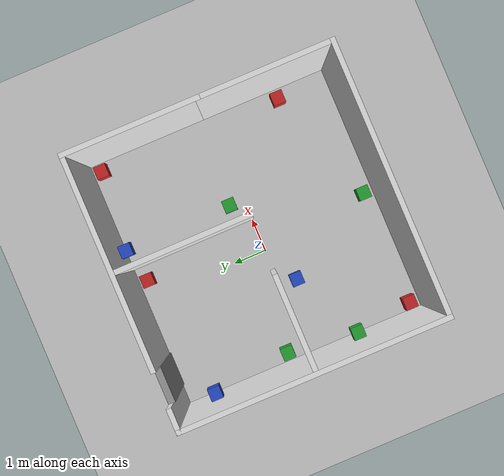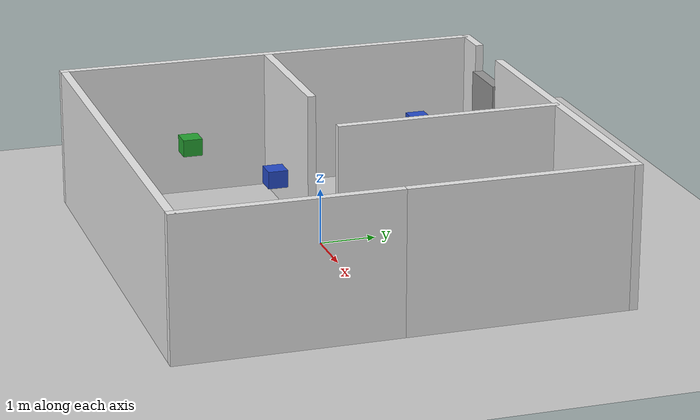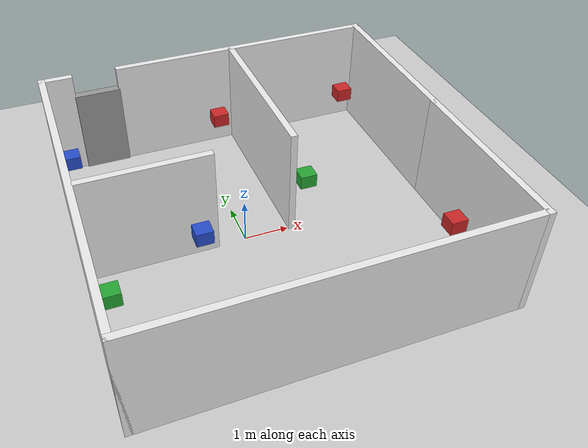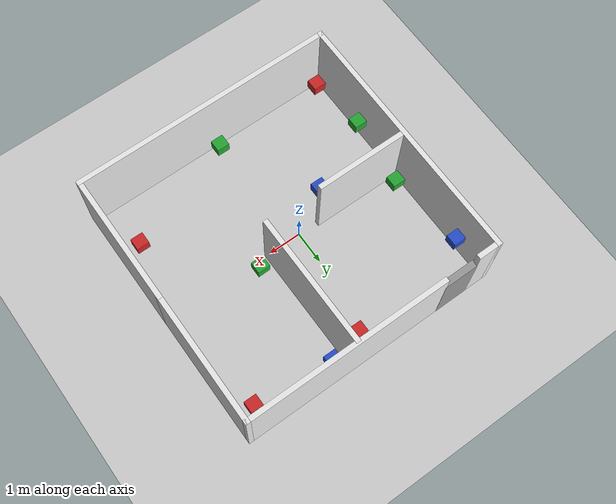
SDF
<sdf version="1.7">
 <world name="default">
  <light name="sun" type="directional">
   <pose>0 0 10 0 -0 0</pose>
   <diffuse>0.8 0.8 0.8 1</diffuse>
   <specular>0.2 0.2 0.2 1</specular>
   <attenuation>
    <range>1000</range>
    <constant>0.9</constant>
    <linear>0.01</linear>
    <quadratic>0.001</quadratic>
   </attenuation>
   <direction>-0.5 0.1 -0.9</direction>
   <spot><inner_angle>0</inner_angle><outer_angle>0</outer_angle><falloff>0</falloff></spot>
  </light>
  <model name="ground_plane">
   <static>1</static>
   <link name="link">
    <collision name="collision">
     <geometry><plane><normal>0 0 1</normal><size>100 100</size></plane></geometry>
     <surface>
      <contact><collide_bitmask>65535</collide_bitmask></contact>
      <friction><ode><mu>100</mu><mu2>50</mu2></ode></friction>
     </surface>
    </collision>
    <visual name="visual">
     <cast_shadows>0</cast_shadows>
     <geometry><plane><normal>0 0 1</normal><size>100 100</size></plane></geometry>
     <material>
      <script><uri>file://media/materials/scripts/gazebo.material</uri><name>Gazebo/Grey</name></script>
     </material>
    </visual>
   </link>
  </model>
  <gravity>0 0 -9.8</gravity>
  <magnetic_field>6e-06 2.3e-05 -4.2e-05</magnetic_field>
  <atmosphere type="adiabatic"/>
  <physics type="ode">
   <max_step_size>0.001</max_step_size>
   <real_time_factor>1</real_time_factor>
   <real_time_update_rate>1000</real_time_update_rate>
  </physics>
  <scene><ambient>0.4 0.4 0.4 1</ambient><background>0.7 0.7 0.7 1</background><shadows>1</shadows></scene>
  <audio><device>default</device></audio>
  <spherical_coordinates>
   <surface_model>EARTH_WGS84</surface_model>
   <latitude_deg>0</latitude_deg>
   <longitude_deg>0</longitude_deg>
   <elevation>0</elevation>
   <heading_deg>0</heading_deg>
  </spherical_coordinates>
  <model name="indoors">
   <pose>0.504507 0.100889 0 0 -0 0</pose>
   <link name="Door_0">
    <collision name="Door_0_Collision">
     <geometry><box><size>1.0414 0.2 2</size></box></geometry>
     <pose>0 0 1 0 -0 0</pose>
    </collision>
    <visual name="Door_0_Visual">
     <pose>0 0 1 0 -0 0</pose>
     <geometry><box><size>1.0414 0.2 2</size></box></geometry>
     <material>
      <script><uri>file://media/materials/scripts/gazebo.material</uri><name>Gazebo/Grey</name></script>
     </material>
    </visual>
    <pose>-2.7443 3.83 0 0 -0 0.001989</pose>
   </link>
   <link name="Wall_10">
    <collision name="Wall_10_Collision">
     <geometry><box><size>0.75 0.15 2.5</size></box></geometry>
     <pose>0 0 1.25 0 -0 0</pose>
    </collision>
    <visual name="Wall_10_Visual">
     <pose>0 0 1.25 0 -0 0</pose>
     <geometry><box><size>0.75 0.15 2.5</size></box></geometry>
     <material>
      <script><uri>file://media/materials/scripts/gazebo.material</uri><name>Gazebo/White</name></script>
      <ambient>0.96 0.89 0.79 1</ambient>
      <diffuse>0.96 0.89 0.79 1</diffuse>
     </material>
     <meta><layer>0</layer></meta>
    </visual>
    <pose>-3.625 3.85 0 0 -0 0</pose>
   </link>
   <link name="Wall_16">
    <collision name="Wall_16_Collision">
     <geometry><box><size>4 0.15 2.5</size></box></geometry>
     <pose>0 0 1.25 0 -0 0</pose>
    </collision>
    <visual name="Wall_16_Visual">
     <pose>0 0 1.25 0 -0 0</pose>
     <geometry><box><size>4 0.15 2.5</size></box></geometry>
     <material>
      <script><uri>file://media/materials/scripts/gazebo.material</uri><name>Gazebo/White</name></script>
      <ambient>0.96 0.89 0.79 1</ambient>
      <diffuse>0.96 0.89 0.79 1</diffuse>
     </material>
     <meta><layer>0</layer></meta>
    </visual>
    <pose>3.925 1.925 0 0 -0 1.5708</pose>
   </link>
   <link name="Wall_17">
    <collision name="Wall_17_Collision">
     <geometry><box><size>6.25 0.15 2.5</size></box></geometry>
     <pose>0 0 1.25 0 -0 0</pose>
    </collision>
    <visual name="Wall_17_Visual">
     <pose>0 0 1.25 0 -0 0</pose>
     <geometry><box><size>6.25 0.15 2.5</size></box></geometry>
     <material>
      <script><uri>file://media/materials/scripts/gazebo.material</uri><name>Gazebo/White</name></script>
      <ambient>0.96 0.89 0.79 1</ambient>
      <diffuse>0.96 0.89 0.79 1</diffuse>
     </material>
     <meta><layer>0</layer></meta>
    </visual>
    <pose>0.875 3.85 0 0 -0 3.14159</pose>
   </link>
   <link name="Wall_26">
    <collision name="Wall_26_Collision">
     <geometry><box><size>4 0.15 2.5</size></box></geometry>
     <pose>0 0 1.25 0 -0 0</pose>
    </collision>
    <visual name="Wall_26_Visual">
     <pose>0 0 1.25 0 -0 0</pose>
     <geometry><box><size>4 0.15 2.5</size></box></geometry>
     <material>
      <script><uri>file://media/materials/scripts/gazebo.material</uri><name>Gazebo/White</name></script>
      <ambient>0.96 0.89 0.79 1</ambient>
      <diffuse>0.96 0.89 0.79 1</diffuse>
     </material>
     <meta><layer>0</layer></meta>
    </visual>
    <pose>0.572237 1.85888 0 0 -0 1.57472</pose>
   </link>
   <link name="Wall_28">
    <collision name="Wall_28_Collision">
     <geometry><box><size>7.85 0.15 2.5</size></box></geometry>
     <pose>0 0 1.25 0 -0 0</pose>
    </collision>
    <visual name="Wall_28_Visual">
     <pose>0 0 1.25 0 -0 0</pose>
     <geometry><box><size>7.85 0.15 2.5</size></box></geometry>
     <material>
      <script><uri>file://media/materials/scripts/gazebo.material</uri><name>Gazebo/White</name></script>
      <ambient>0.96 0.89 0.79 1</ambient>
      <diffuse>0.96 0.89 0.79 1</diffuse>
     </material>
     <meta><layer>0</layer></meta>
    </visual>
    <pose>-3.925 0 0 0 -0 1.5708</pose>
   </link>
   <link name="Wall_3">
    <collision name="Wall_3_Collision">
     <geometry><box><size>8 0.15 2.5</size></box></geometry>
     <pose>0 0 1.25 0 -0 0</pose>
    </collision>
    <visual name="Wall_3_Visual">
     <pose>0 0 1.25 0 -0 0</pose>
     <geometry><box><size>8 0.15 2.5</size></box></geometry>
     <material>
      <script><uri>file://media/materials/scripts/gazebo.material</uri><name>Gazebo/White</name></script>
      <ambient>0.96 0.89 0.79 1</ambient>
      <diffuse>0.96 0.89 0.79 1</diffuse>
     </material>
     <meta><layer>0</layer></meta>
    </visual>
    <pose>0 -3.85 0 0 -0 0</pose>
   </link>
   <link name="Wall_31">
    <collision name="Wall_31_Collision">
     <geometry><box><size>2.75 0.15 2.5</size></box></geometry>
     <pose>0 0 1.25 0 -0 0</pose>
    </collision>
    <visual name="Wall_31_Visual">
     <pose>0 0 1.25 0 -0 0</pose>
     <geometry><box><size>2.75 0.15 2.5</size></box></geometry>
     <material>
      <script><uri>file://media/materials/scripts/gazebo.material</uri><name>Gazebo/White</name></script>
      <ambient>0.96 0.89 0.79 1</ambient>
      <diffuse>0.96 0.89 0.79 1</diffuse>
     </material>
     <meta><layer>0</layer></meta>
    </visual>
    <pose>-2.48533 -0.066125 0 0 -0 0</pose>
   </link>
   <link name="Wall_4">
    <collision name="Wall_4_Collision">
     <geometry><box><size>4 0.15 2.5</size></box></geometry>
     <pose>0 0 1.25 0 -0 0</pose>
    </collision>
    <visual name="Wall_4_Visual">
     <pose>0 0 1.25 0 -0 0</pose>
     <geometry><box><size>4 0.15 2.5</size></box></geometry>
     <material>
      <script><uri>file://media/materials/scripts/gazebo.material</uri><name>Gazebo/White</name></script>
      <ambient>0.96 0.89 0.79 1</ambient>
      <diffuse>0.96 0.89 0.79 1</diffuse>
     </material>
     <meta><layer>0</layer></meta>
    </visual>
    <pose>3.925 -1.925 0 0 -0 1.5708</pose>
   </link>
   <static>1</static>
  </model>
  <model name="unit_box_clone">
   <pose>-2.90946 0.554893 0.932775 0 -0 0</pose>
   <link name="link">
    <inertial>
     <mass>1</mass>
     <inertia>
      <ixx>0.166667</ixx>
      <ixy>0</ixy>
      <ixz>0</ixz>
      <iyy>0.166667</iyy>
      <iyz>0</iyz>
      <izz>0.166667</izz>
     </inertia>
    </inertial>
    <collision name="collision"><geometry><box><size>0.374488 0.357711 0.31555</size></box></geometry></collision>
    <visual name="visual">
     <geometry><box><size>0.374488 0.357711 0.31555</size></box></geometry>
     <material>
      <script><name>Gazebo/Green</name><uri>file://media/materials/scripts/gazebo.material</uri></script>
      <ambient>0 1 0 1</ambient>
      <diffuse>0 1 0 1</diffuse>
     </material>
    </visual>
   </link>
  </model>
  <model name="unit_box_clone_clone">
   <pose>0.552931 3.43036 0.932775 0 -0 0</pose>
   <link name="link">
    <inertial>
     <mass>1</mass>
     <inertia>
      <ixx>0.166667</ixx>
      <ixy>0</ixy>
      <ixz>0</ixz>
      <iyy>0.166667</iyy>
      <iyz>0</iyz>
      <izz>0.166667</izz>
     </inertia>
    </inertial>
    <collision name="collision"><geometry><box><size>0.374488 0.357711 0.31555</size></box></geometry></collision>
    <visual name="visual">
     <geometry><box><size>0.374488 0.357711 0.31555</size></box></geometry>
     <material>
      <script><name>Gazebo/Red</name><uri>file://media/materials/scripts/gazebo.material</uri></script>
      <ambient>1 0 0 1</ambient>
      <diffuse>1 0 0 1</diffuse>
     </material>
    </visual>
   </link>
  </model>
  <model name="unit_box_clone_clone_clone">
   <pose>3.91005 3.42966 0.932775 0 -0 0</pose>
   <link name="link">
    <inertial>
     <mass>1</mass>
     <inertia>
      <ixx>0.166667</ixx>
      <ixy>0</ixy>
      <ixz>0</ixz>
      <iyy>0.166667</iyy>
      <iyz>0</iyz>
      <izz>0.166667</izz>
     </inertia>
    </inertial>
    <collision name="collision"><geometry><box><size>0.374488 0.357711 0.31555</size></box></geometry></collision>
    <visual name="visual">
     <geometry><box><size>0.374488 0.357711 0.31555</size></box></geometry>
     <material>
      <script><name>Gazebo/Red</name><uri>file://media/materials/scripts/gazebo.material</uri></script>
      <ambient>1 0 0 1</ambient>
      <diffuse>1 0 0 1</diffuse>
     </material>
    </visual>
   </link>
  </model>
  <model name="unit_box_clone_clone_clone_0">
   <pose>1.60691 0.447923 0.932775 0 -0 0</pose>
   <link name="link">
    <inertial>
     <mass>1</mass>
     <inertia>
      <ixx>0.166667</ixx>
      <ixy>0</ixy>
      <ixz>0</ixz>
      <iyy>0.166667</iyy>
      <iyz>0</iyz>
      <izz>0.166667</izz>
     </inertia>
    </inertial>
    <collision name="collision"><geometry><box><size>0.374488 0.357711 0.31555</size></box></geometry></collision>
    <visual name="visual">
     <geometry><box><size>0.374488 0.357711 0.31555</size></box></geometry>
     <material>
      <script><name>Gazebo/Green</name><uri>file://media/materials/scripts/gazebo.material</uri></script>
      <ambient>0 1 0 1</ambient>
      <diffuse>0 1 0 1</diffuse>
     </material>
    </visual>
   </link>
  </model>
  <model name="unit_box_clone_clone_clone_1">
   <pose>3.8847 -2.00737 0.932775 0 -0 0</pose>
   <link name="link">
    <inertial>
     <mass>1</mass>
     <inertia>
      <ixx>0.166667</ixx>
      <ixy>0</ixy>
      <ixz>0</ixz>
      <iyy>0.166667</iyy>
      <iyz>0</iyz>
      <izz>0.166667</izz>
     </inertia>
    </inertial>
    <collision name="collision"><geometry><box><size>0.374488 0.357711 0.31555</size></box></geometry></collision>
    <visual name="visual">
     <geometry><box><size>0.374488 0.357711 0.31555</size></box></geometry>
     <material>
      <script><name>Gazebo/Red</name><uri>file://media/materials/scripts/gazebo.material</uri></script>
      <ambient>1 0 0 1</ambient>
      <diffuse>1 0 0 1</diffuse>
     </material>
    </visual>
   </link>
  </model>
  <model name="unit_box_clone_clone_clone_2">
   <pose>0.444184 -3.20344 0.932775 0 -0 0</pose>
   <link name="link">
    <inertial>
     <mass>1</mass>
     <inertia>
      <ixx>0.166667</ixx>
      <ixy>0</ixy>
      <ixz>0</ixz>
      <iyy>0.166667</iyy>
      <iyz>0</iyz>
      <izz>0.166667</izz>
     </inertia>
    </inertial>
    <collision name="collision"><geometry><box><size>0.374488 0.357711 0.31555</size></box></geometry></collision>
    <visual name="visual">
     <geometry><box><size>0.374488 0.357711 0.31555</size></box></geometry>
     <material>
      <script><name>Gazebo/Green</name><uri>file://media/materials/scripts/gazebo.material</uri></script>
      <ambient>0 1 0 1</ambient>
      <diffuse>0 1 0 1</diffuse>
     </material>
    </visual>
   </link>
  </model>
  <model name="unit_box_clone_clone_clone_3">
   <pose>-2.9403 -3.2076 0.932775 0 -0 0</pose>
   <link name="link">
    <inertial>
     <mass>1</mass>
     <inertia>
      <ixx>0.166667</ixx>
      <ixy>0</ixy>
      <ixz>0</ixz>
      <iyy>0.166667</iyy>
      <iyz>0</iyz>
      <izz>0.166667</izz>
     </inertia>
    </inertial>
    <collision name="collision"><geometry><box><size>0.374488 0.357711 0.31555</size></box></geometry></collision>
    <visual name="visual">
     <geometry><box><size>0.374488 0.357711 0.31555</size></box></geometry>
     <material>
      <script><name>Gazebo/Red</name><uri>file://media/materials/scripts/gazebo.material</uri></script>
      <ambient>1 0 0 1</ambient>
      <diffuse>1 0 0 1</diffuse>
     </material>
    </visual>
   </link>
  </model>
  <model name="unit_box_clone_clone_clone_3_clone">
   <pose>-3.14275 -1.51269 0.967775 0 -0 0</pose>
   <link name="link">
    <inertial>
     <mass>1</mass>
     <inertia>
      <ixx>0.166667</ixx>
      <ixy>0</ixy>
      <ixz>0</ixz>
      <iyy>0.166667</iyy>
      <iyz>0</iyz>
      <izz>0.166667</izz>
     </inertia>
    </inertial>
    <collision name="collision"><geometry><box><size>0.374488 0.357711 0.31555</size></box></geometry></collision>
    <visual name="visual">
     <geometry><box><size>0.374488 0.357711 0.31555</size></box></geometry>
     <material>
      <script><name>Gazebo/Green</name><uri>file://media/materials/scripts/gazebo.material</uri></script>
      <ambient>0 1 0 1</ambient>
      <diffuse>0 1 0 1</diffuse>
     </material>
    </visual>
   </link>
  </model>
  <model name="unit_box_clone_clone_clone_3_clone_clone">
   <pose>-3.15642 2.89854 0.967775 0 -0 0</pose>
   <link name="link">
    <inertial>
     <mass>1</mass>
     <inertia>
      <ixx>0.166667</ixx>
      <ixy>0</ixy>
      <ixz>0</ixz>
      <iyy>0.166667</iyy>
      <iyz>0</iyz>
      <izz>0.166667</izz>
     </inertia>
    </inertial>
    <collision name="collision"><geometry><box><size>0.374488 0.357711 0.31555</size></box></geometry></collision>
    <visual name="visual">
     <geometry><box><size>0.374488 0.357711 0.31555</size></box></geometry>
     <material>
      <script><name>Gazebo/Blue</name><uri>file://media/materials/scripts/gazebo.material</uri></script>
      <ambient>0 0 1 1</ambient>
      <diffuse>0 0 1 1</diffuse>
     </material>
    </visual>
   </link>
  </model>
  <model name="unit_box_clone_clone_clone_3_clone_clone_0">
   <pose>1.5681 3.66369 0.967775 0 -0 0</pose>
   <link name="link">
    <inertial>
     <mass>1</mass>
     <inertia>
      <ixx>0.166667</ixx>
      <ixy>0</ixy>
      <ixz>0</ixz>
      <iyy>0.166667</iyy>
      <iyz>0</iyz>
      <izz>0.166667</izz>
     </inertia>
    </inertial>
    <collision name="collision"><geometry><box><size>0.374488 0.357711 0.31555</size></box></geometry></collision>
    <visual name="visual">
     <geometry><box><size>0.374488 0.357711 0.31555</size></box></geometry>
     <material>
      <script><name>Gazebo/Blue</name><uri>file://media/materials/scripts/gazebo.material</uri></script>
      <ambient>0 0 1 1</ambient>
      <diffuse>0 0 1 1</diffuse>
     </material>
    </visual>
   </link>
  </model>
  <light name="user_spot_light_0" type="spot">
   <pose>-1.12335 -1.07557 1 0 -0 0</pose>
   <diffuse>0.5 0.5 0.5 1</diffuse>
   <specular>0.1 0.1 0.1 1</specular>
   <direction>0 0 -1</direction>
   <attenuation>
    <range>20</range>
    <constant>0.5</constant>
    <linear>0.01</linear>
    <quadratic>0.001</quadratic>
   </attenuation>
   <cast_shadows>0</cast_shadows>
   <spot><inner_angle>0.6</inner_angle><outer_angle>1</outer_angle><falloff>1</falloff></spot>
  </light>
  <model name="unit_box_clone_clone_clone_2_clone">
   <pose>-1.07058 -0.499671 0.932775 0 -0 0</pose>
   <link name="link">
    <inertial>
     <mass>1</mass>
     <inertia>
      <ixx>0.166667</ixx>
      <ixy>0</ixy>
      <ixz>0</ixz>
      <iyy>0.166667</iyy>
      <iyz>0</iyz>
      <izz>0.166667</izz>
     </inertia>
    </inertial>
    <collision name="collision"><geometry><box><size>0.374488 0.357711 0.31555</size></box></geometry></collision>
    <visual name="visual">
     <geometry><box><size>0.374488 0.357711 0.31555</size></box></geometry>
     <material>
      <script><name>Gazebo/Blue</name><uri>file://media/materials/scripts/gazebo.material</uri></script>
      <ambient>0 0 1 1</ambient>
      <diffuse>0 0 1 1</diffuse>
     </material>
    </visual>
   </link>
  </model>
  <light name="user_spot_light_0_clone" type="spot">
   <pose>3.12258 -2.08141 1.94784 0 -0 0</pose>
   <diffuse>0.5 0.5 0.5 1</diffuse>
   <specular>0.1 0.1 0.1 1</specular>
   <direction>0 0 -1</direction>
   <attenuation>
    <range>20</range>
    <constant>0.5</constant>
    <linear>0.01</linear>
    <quadratic>0.001</quadratic>
   </attenuation>
   <cast_shadows>0</cast_shadows>
   <spot><inner_angle>0.6</inner_angle><outer_angle>1</outer_angle><falloff>1</falloff></spot>
  </light>
  <light name="user_spot_light_0_clone_clone" type="spot">
   <pose>0.229959 -2.20359 1.94784 0 -0 0</pose>
   <diffuse>0.5 0.5 0.5 1</diffuse>
   <specular>0.1 0.1 0.1 1</specular>
   <direction>0 0 -1</direction>
   <attenuation>
    <range>20</range>
    <constant>0.5</constant>
    <linear>0.01</linear>
    <quadratic>0.001</quadratic>
   </attenuation>
   <cast_shadows>0</cast_shadows>
   <spot><inner_angle>0.6</inner_angle><outer_angle>1</outer_angle><falloff>1</falloff></spot>
  </light>
  <light name="user_spot_light_0_clone_clone_clone" type="spot">
   <pose>-2.04038 -2.42291 1.94784 0 -0 0</pose>
   <diffuse>0.5 0.5 0.5 1</diffuse>
   <specular>0.1 0.1 0.1 1</specular>
   <direction>0 0 -1</direction>
   <attenuation>
    <range>20</range>
    <constant>0.5</constant>
    <linear>0.01</linear>
    <quadratic>0.001</quadratic>
   </attenuation>
   <cast_shadows>0</cast_shadows>
   <spot><inner_angle>0.6</inner_angle><outer_angle>1</outer_angle><falloff>1</falloff></spot>
  </light>
  <light name="user_spot_light_0_clone_clone_clone_clone" type="spot">
   <pose>-2.23727 -1.4806 1.94784 0 -0 0</pose>
   <diffuse>0.5 0.5 0.5 1</diffuse>
   <specular>0.1 0.1 0.1 1</specular>
   <direction>0 0 -1</direction>
   <attenuation>
    <range>20</range>
    <constant>0.5</constant>
    <linear>0.01</linear>
    <quadratic>0.001</quadratic>
   </attenuation>
   <cast_shadows>0</cast_shadows>
   <spot><inner_angle>0.6</inner_angle><outer_angle>1</outer_angle><falloff>1</falloff></spot>
  </light>
  <light name="user_spot_light_0_clone_clone_clone_clone_0" type="spot">
   <pose>-2.06056 1.25485 1.94784 0 -0 0</pose>
   <diffuse>0.5 0.5 0.5 1</diffuse>
   <specular>0.1 0.1 0.1 1</specular>
   <direction>0 0 -1</direction>
   <attenuation>
    <range>20</range>
    <constant>0.5</constant>
    <linear>0.01</linear>
    <quadratic>0.001</quadratic>
   </attenuation>
   <cast_shadows>0</cast_shadows>
   <spot><inner_angle>0.6</inner_angle><outer_angle>1</outer_angle><falloff>1</falloff></spot>
  </light>
  <light name="user_spot_light_0_clone_clone_clone_clone_1" type="spot">
   <pose>-2.11244 2.94779 1.94784 0 -0 0</pose>
   <diffuse>0.5 0.5 0.5 1</diffuse>
   <specular>0.1 0.1 0.1 1</specular>
   <direction>0 0 -1</direction>
   <attenuation>
    <range>20</range>
    <constant>0.5</constant>
    <linear>0.01</linear>
    <quadratic>0.001</quadratic>
   </attenuation>
   <cast_shadows>0</cast_shadows>
   <spot><inner_angle>0.6</inner_angle><outer_angle>1</outer_angle><falloff>1</falloff></spot>
  </light>
  <light name="user_spot_light_0_clone_clone_clone_clone_2" type="spot">
   <pose>-0.092911 2.64255 1.94784 0 -0 0</pose>
   <diffuse>0.5 0.5 0.5 1</diffuse>
   <specular>0.1 0.1 0.1 1</specular>
   <direction>0 0 -1</direction>
   <attenuation>
    <range>20</range>
    <constant>0.5</constant>
    <linear>0.01</linear>
    <quadratic>0.001</quadratic>
   </attenuation>
   <cast_shadows>0</cast_shadows>
   <spot><inner_angle>0.6</inner_angle><outer_angle>1</outer_angle><falloff>1</falloff></spot>
  </light>
  <light name="user_spot_light_0_clone_clone_clone_clone_3" type="spot">
   <pose>2.40239 0.352489 1.94784 0 -0 0</pose>
   <diffuse>0.5 0.5 0.5 1</diffuse>
   <specular>0.1 0.1 0.1 1</specular>
   <direction>0 0 -1</direction>
   <attenuation>
    <range>20</range>
    <constant>0.5</constant>
    <linear>0.01</linear>
    <quadratic>0.001</quadratic>
   </attenuation>
   <cast_shadows>0</cast_shadows>
   <spot><inner_angle>0.6</inner_angle><outer_angle>1</outer_angle><falloff>1</falloff></spot>
  </light>
  <light name="user_spot_light_0_clone_clone_clone_clone_4" type="spot">
   <pose>3.25116 2.64335 1.94784 0 -0 0</pose>
   <diffuse>0.5 0.5 0.5 1</diffuse>
   <specular>0.1 0.1 0.1 1</specular>
   <direction>0 0 -1</direction>
   <attenuation>
    <range>20</range>
    <constant>0.5</constant>
    <linear>0.01</linear>
    <quadratic>0.001</quadratic>
   </attenuation>
   <cast_shadows>0</cast_shadows>
   <spot><inner_angle>0.6</inner_angle><outer_angle>1</outer_angle><falloff>1</falloff></spot>
  </light>
  <light name="user_spot_light_0_clone_clone_clone_clone_5" type="spot">
   <pose>1.65761 2.62032 1.94784 0 -0 0</pose>
   <diffuse>0.5 0.5 0.5 1</diffuse>
   <specular>0.1 0.1 0.1 1</specular>
   <direction>0 0 -1</direction>
   <attenuation>
    <range>20</range>
    <constant>0.5</constant>
    <linear>0.01</linear>
    <quadratic>0.001</quadratic>
   </attenuation>
   <cast_shadows>0</cast_shadows>
   <spot><inner_angle>0.6</inner_angle><outer_angle>1</outer_angle><falloff>1</falloff></spot>
  </light>
  <light name="user_spot_light_0_clone_clone_clone_clone_5_clone" type="spot">
   <pose>4.1392 1.33364 2.30377 0 -0 0</pose>
   <diffuse>0.5 0.5 0.5 1</diffuse>
   <specular>0.1 0.1 0.1 1</specular>
   <direction>0 0 -1</direction>
   <attenuation>
    <range>20</range>
    <constant>0.5</constant>
    <linear>0.01</linear>
    <quadratic>0.001</quadratic>
   </attenuation>
   <cast_shadows>0</cast_shadows>
   <spot><inner_angle>0.6</inner_angle><outer_angle>1</outer_angle><falloff>1</falloff></spot>
  </light>
  <light name="user_spot_light_0_clone_clone_clone_clone_5_clone_0" type="spot">
   <pose>0.396045 0.839982 2.30377 0 -0 0</pose>
   <diffuse>0.5 0.5 0.5 1</diffuse>
   <specular>0.1 0.1 0.1 1</specular>
   <direction>0 0 -1</direction>
   <attenuation>
    <range>20</range>
    <constant>0.5</constant>
    <linear>0.01</linear>
    <quadratic>0.001</quadratic>
   </attenuation>
   <cast_shadows>0</cast_shadows>
   <spot><inner_angle>0.6</inner_angle><outer_angle>1</outer_angle><falloff>1</falloff></spot>
  </light>
  <light name="user_spot_light_0_clone_clone_clone_clone_5_clone_1" type="spot">
   <pose>-1.35777 -3.5373 2.30377 0 -0 0</pose>
   <diffuse>0.5 0.5 0.5 1</diffuse>
   <specular>0.1 0.1 0.1 1</specular>
   <direction>0 0 -1</direction>
   <attenuation>
    <range>20</range>
    <constant>0.5</constant>
    <linear>0.01</linear>
    <quadratic>0.001</quadratic>
   </attenuation>
   <cast_shadows>0</cast_shadows>
   <spot><inner_angle>0.6</inner_angle><outer_angle>1</outer_angle><falloff>1</falloff></spot>
  </light>
 </world>
</sdf>
